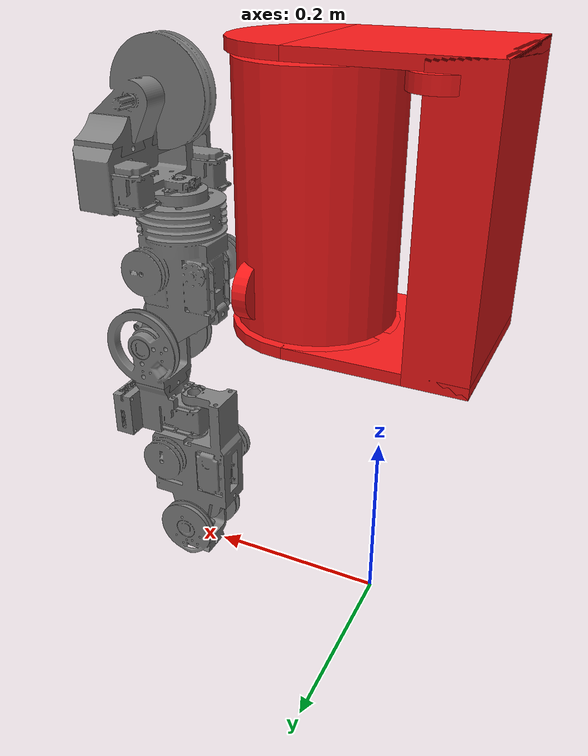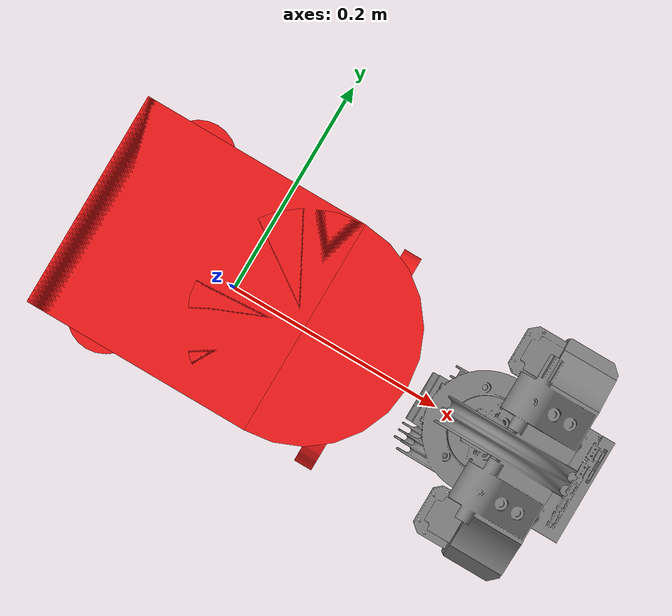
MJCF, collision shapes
<mujoco model="GH360">
    <compiler discardvisual="false" angle="radian"/>

    <asset>
        <mesh name="shoulder0_mesh" file="meshes/360/360_shoulder_0.stl" scale="0.001 0.001 0.001"/>
        <mesh name="shoulder1_mesh" file="meshes/360/360_shoulder_1.stl" scale="1 1 1"/>
        <mesh name="shoulder2_mesh" file="meshes/360/360_shoulder_2.stl" scale="0.001 0.001 0.001"/>
        <mesh name="shoulder3_mesh" file="meshes/360/360_shoulder_3.stl" scale="0.001 0.001 0.001"/>
        <mesh name="upperarm0_mesh" file="meshes/360/360_upper_arm_0.stl" scale="0.001 0.001 0.001"/>
        <mesh name="upperarm1_mesh" file="meshes/360/360_upper_arm_1.stl" scale="0.001 0.001 0.001"/>
        <mesh name="upperarm2_mesh" file="meshes/360/360_upper_arm_2.stl" scale="0.001 0.001 0.001"/>
        <mesh name="lowerarm0_mesh" file="meshes/360/360_lower_arm_0.stl" scale="0.001 0.001 0.001"/>
        <mesh name="lowerarm1_mesh" file="meshes/360/360_lower_arm_1.stl" scale="0.001 0.001 0.001"/>
        <mesh name="lowerarm2_mesh" file="meshes/360/360_lower_arm_2.stl" scale="0.001 0.001 0.001"/>

    </asset>

    <default>
        <site type="sphere" rgba=".9 .9 .9 1" size="5E-03"/>
        <joint damping="0.1"/>
        <muscle ctrllimited="true" ctrlrange="0 1"/>
    </default>

    <worldbody>
        <body name="base" pos="0 0 0">
            <!-- robot view -->
            <camera mode="fixed" name="robotview" pos="1.0 0 0.4" quat="0.653 0.271 0.271 0.653"/>
            <inertial diaginertia="0 0 0" mass="0" pos="0 0 0"/>
            <!-- mount attached here -->

            <body name="shoulder0" pos="-100E-03 0E-03 330E-03" euler="1.571 1.571 0">
                <geom name="shoulder0_vis" group="1" type="mesh" contype="0" conaffinity="0" mesh="shoulder0_mesh" pos="0 0 0" euler="0 0 0"/>
                <geom name="shoulder0_col_back" group="0" type="box" pos="0E-03 140.5E-03 25E-03" size="86E-03 140.5E-03 31E-03" rgba=".95 .1 .1 0.6"/>
                <geom name="shoulder0_col_top_1" group="0" type="box" pos="0E-03 275.00E-03 85.00E-03" size="86E-03 6E-03 91E-03" rgba=".95 .1 .1 0.6"/>
                <geom name="shoulder0_col_top_2" group="0" type="cylinder" fromto="0 281.00E-03 176E-03 0 269E-03 176E-03" size="86E-03" rgba=".95 .1 .1 0.6"/>
                <geom name="shoulder0_col_bot_1" group="0" type="box" pos="0 6E-03 85E-03" size="86E-03 6E-03 91E-03" rgba=".95 .1 .1 0.6"/>
                <geom name="shoulder0_col_bot_2" group="0" type="cylinder" fromto="0 0E-03 176E-03 0 12E-03 176E-03" size="86E-03" rgba=".95 .1 .1 0.6"/>
                <geom name="shoulder0_pulley_right_col" group="0" type="cylinder" fromto="65.90E-03 253.267E-03 47.324E-03 65.90E-03 268.35E-03 47.324E-03" size="28E-03" rgba=".95 .1 .1 0.6"/>
                <geom name="shoulder0_pulley_left_col" group="0" type="cylinder" fromto="-65.90E-03 249.962E-03 47.324E-03 -65.90E-03 265.045E-03 47.324E-03" size="28E-03" rgba=".95 .1 .1 0.6"/>

                <!--R0 Joint-->
                <inertial pos="2.713E-03 148.309E-03 49.227E-03" mass="3744.519E-03" fullinertia="5.643E-02 2.838E-02 4.930E-02 4.639E-04 -58154.639E-09 8.301E-04" />

                <body name="shoulder1" pos="0E-03 0E-03 0E-03">
                    <joint name="shoulder1_joint" type="hinge" axis="0 1 0" pos="0E-03 284E-03 176E-03" limited="true" range="-1.571 1.571" />
                    <geom name="shoulder1_vis" group="1" type="mesh" mesh="shoulder1_mesh" contype="0" conaffinity="0" pos="0 0 0" euler="0 0 0"/>
                    <geom name="shoulder1_col_outer" group="0" type="cylinder" fromto="0E-03 265E-03 176E-03 0 15E-03 176E-03" size="81E-03" rgba=".95 .1 .1 0.6" />
                    <geom name="shoulder1_pulley_right_col" group="0" type="cylinder" fromto="63.70E-03 55.524E-03 209.206E-03 63.70E-03 55.524E-03 224.289E-03" size="28E-03" rgba=".95 .1 .1 0.6"/>
                    <geom name="shoulder1_pulley_left_col" group="0" type="cylinder" fromto="-63.70E-03 55.524E-03 218.528E-03 -63.70E-03 55.524E-03 233.611E-03" size="28E-03" rgba=".95 .1 .1 0.6"/>

                    <!--R1 Joint-->
                    <inertial pos="-0.166E-03 111.148E-03 177.807E-03" mass="1832.108E-03" fullinertia="2.133E-02 7.556E-03 2.037E-02 -25913.861E-09 1.146E-04 2.253E-04" />

                    <body name="shoulder2" pos="0E-03 0E-03 0E-03">
                        <joint name="shoulder2_joint" type="hinge" axis="0 0 1" pos="0E-03 160E-03 262.8E-03" limited="true" range="-1.571 1.571" />
                        <geom name="shoulder2_vis" group="1" type="mesh" mesh="shoulder2_mesh" contype="0" conaffinity="0" pos="0 0 0" euler="0 0 0"/>

                        <!--R2 Joint-->
                        <inertial pos="0.78E-03 165.245E-03 208.015E-03" mass="1416.795E-03" fullinertia="8.669E-03 9.468E-03 3.559E-03 -61355.555E-09 -1.502E-04 -1.559E-03" />

                        <body name="shoulder3" pos="0E-03 0E-03 0E-03">
                            <joint name="shoulder3_joint" type="hinge" axis="-1 0 0" pos="-63E-03 219.896E-03 346.801E-03" limited="true" range="-0.2 1.571" />
                            <geom name="shoulder3_vis" group="1" type="mesh" mesh="shoulder3_mesh" pos="0 0 0" euler="0 0 0"/>

                            <!--R3 Joint-->
                            <inertial pos="0.633E-03 207.684E-03 356.277E-03" mass="459.953E-03" fullinertia="4.908E-04 7.475E-04 7.713E-04 -716.274E-09 541.784E-09 73592.114E-09" />

                            <body name="upperarm0" pos="0E-03 0E-03 0E-03">
                                <geom name="upperarm0_vis" group="1" type="mesh" mesh="upperarm0_mesh" pos="0 0 0" euler="0 0 0"/>

                                <!--R4 Joint-->
                                <inertial pos="-1.614E-03 133.964E-03 364.032E-03" mass="818.378E-03" fullinertia="9.134E-04 3.100E-03 3.103E-03 -2.038E-04 14733.703E-09 -1.596E-04" />

                                <body name="upperarm1" pos="0E-03 0E-03 0E-03">
                                    <joint name="upperarm1_joint" type="hinge" axis="0 1 0" pos="0.855E-03 113.317E-03 333.117E-03" limited="true" range="-3.1416 3.1416" />
                                    <geom name="upperarm1_vis" group="1" type="mesh" mesh="upperarm1_mesh" pos="0 0 0" euler="0 0 0"/>

                                    <!--R5 Joint-->
                                    <inertial pos="1.038E-03 37.141E-03 335.496E-03" mass="751.159E-03" fullinertia="1.822E-03 7.805E-04 1.595E-03 11374.824E-09 -39859.45E-09 1.482E-04" />

                                    <body name="upperarm2" pos="0E-03 0E-03 0E-03">
                                        <joint name="upperarm2_joint" type="hinge" axis="-1 0 0" pos="-11.345E-03 -54.883E-03 373.117E-03" limited="true" range="-0.4 2.2" />
                                        <geom name="upperarm2_vis" group="1" type="mesh" mesh="upperarm2_mesh"  pos="0 0 0" euler="0 0 0"/>

                                        <!--R6 Joint-->
                                        <inertial pos="0.874E-03 -70.987E-03 370.36E-03" mass="157.454E-03" fullinertia="1.526E-04 1.876E-04 2.460E-04 -178.496E-09 93.437E-09 2752.137E-09" />

                                        <body name="lowerarm0" pos="0E-03 0E-03 0E-03">
                                            <geom name="lowerarm0_vis" group="1" type="mesh" mesh="lowerarm0_mesh" pos="0 0 0" euler="0 0 0"/>

                                            <!--R7 Joint-->
                                            <inertial pos="1.081E-03 -147.507E-03 367.727E-03" mass="268.826E-03" fullinertia="2.717E-04 2.632E-04 1.492E-04 -10.982E-09 -1484.122E-09 -23234.671E-09" />

                                            <body name="lowerarm1" pos="0E-03 0E-03 0E-03">
                                                <joint name="lowerarm1_joint" type="hinge" axis="0 1 0" pos="1.021E-03 -128.68E-03 331.617E-03" limited="true" range="-1.571 1.571" />
                                                <geom name="lowerarm1_vis" group="1" type="mesh" mesh="lowerarm1_mesh" pos="0 0 0" euler="0 0 0"/>

                                                <!--R8 Joint-->
                                                <inertial pos="1.346E-03 -218.297E-03 328.426E-03" mass="579.824E-03" fullinertia="1.293E-03 5.658E-04 9.995E-04 10703.597E-09 -20960.705E-09 1.297E-04"/>

                                                <body name="lowerarm2" pos="0E-03 0E-03 0E-03">
                                                    <joint name="lowerarm2_joint" type="hinge" axis="-1 0 0" pos="-12.109E-03 -298.364E-03 331.517E-03" limited="true" range="-1.571 1.571" />
                                                    <geom name="lowerarm2_vis" group="1" type="mesh" mesh="lowerarm2_mesh" pos="0 0 0" euler="0 0 0"/>

                                                    <!--R9 Joint-->
                                                    <inertial pos="1.133E-03 -307.353E-03 331.253E-03" mass="119.007E-03" fullinertia="72692.866E-09 1.201E-04 1.438E-04 -39.442E-09 -267.454E-09 -1065.399E-09 "/>

                                                    <site name="testing" pos="1.1135E-03 -335.364E-03 331.567E-03" />
                                                    <body name="right_hand" pos="1.1135E-03 -335.364E-03 331.567E-03" euler="1.5708 0 0">
                                                        <!-- This camera points out from the eef. -->
                                                        <camera mode="fixed" name="eye_in_hand" pos="0.05 0 0" quat="0 0.707108 0.707108 0" fovy="75"/>
                                                        <!-- to add gripper -->
                                                    </body>
                                                </body>
                                            </body>
                                        </body>
                                    </body>
                                </body>
                            </body>
                        </body>
                    </body>
                </body>
            </body>
        </body>
    </worldbody>

    <actuator>
        <motor ctrllimited="true" ctrlrange="-47 47" name="shoulder1_motor" joint="shoulder1_joint" />
        <motor ctrllimited="true" ctrlrange="-32 32" name="shoulder2_motor" joint="shoulder2_joint" />
        <motor ctrllimited="true" ctrlrange="-32 32" name="shoulder3_motor" joint="shoulder3_joint" />
        <motor ctrllimited="true" ctrlrange="-31 31" name="upperarm1_motor" joint="upperarm1_joint" />
        <motor ctrllimited="true" ctrlrange="-29 29" name="upperarm2_motor" joint="upperarm2_joint" />
        <motor ctrllimited="true" ctrlrange="-3 3" name="lowerarm1_motor" joint="lowerarm1_joint" />
        <motor ctrllimited="true" ctrlrange="-12 12" name="lowerarm2_motor" joint="lowerarm2_joint" />

    </actuator>
</mujoco>
